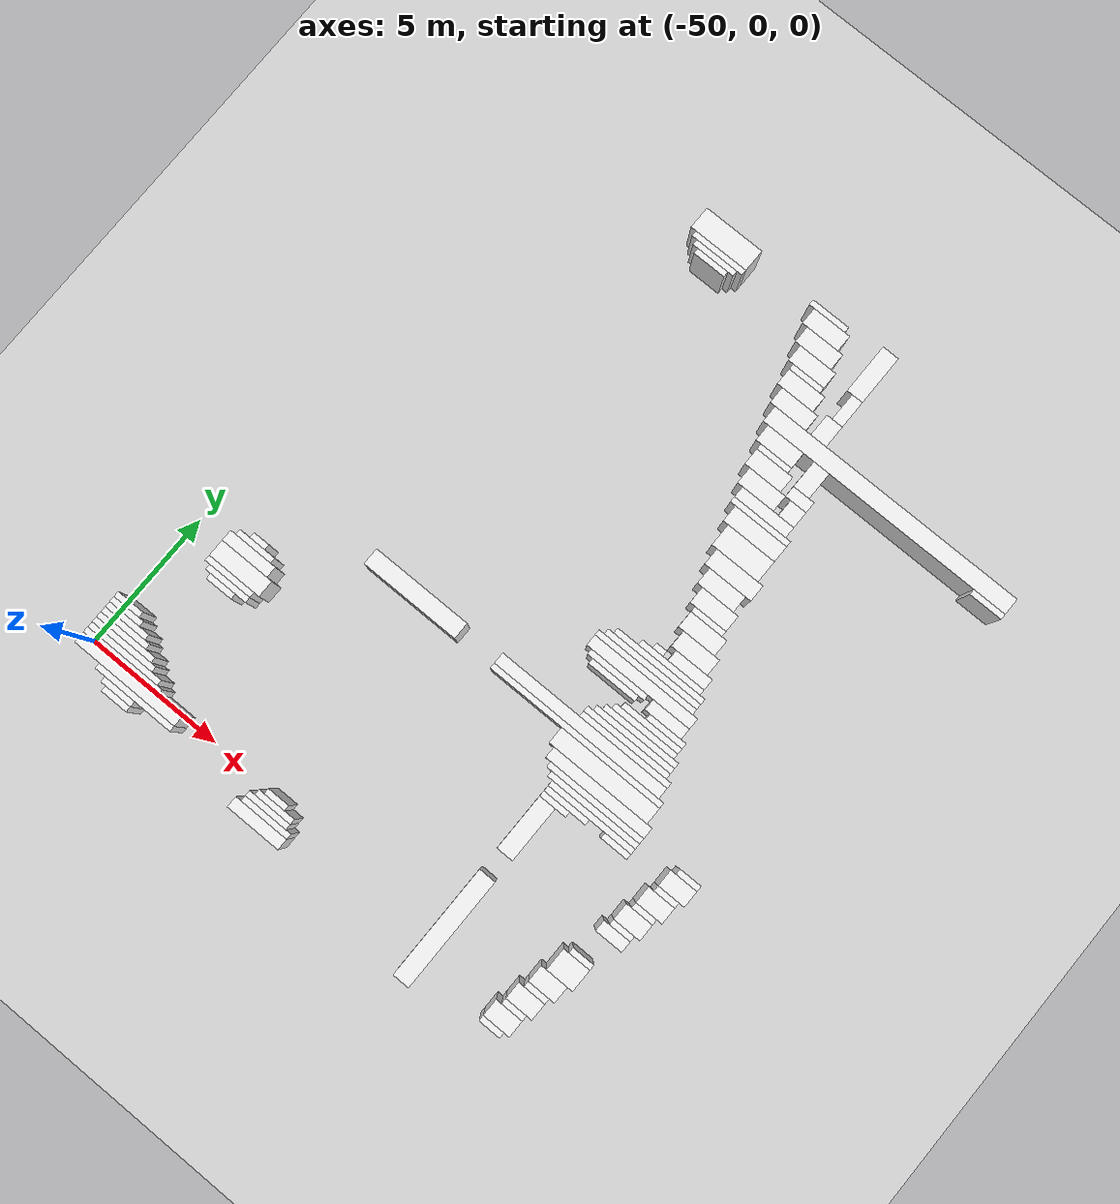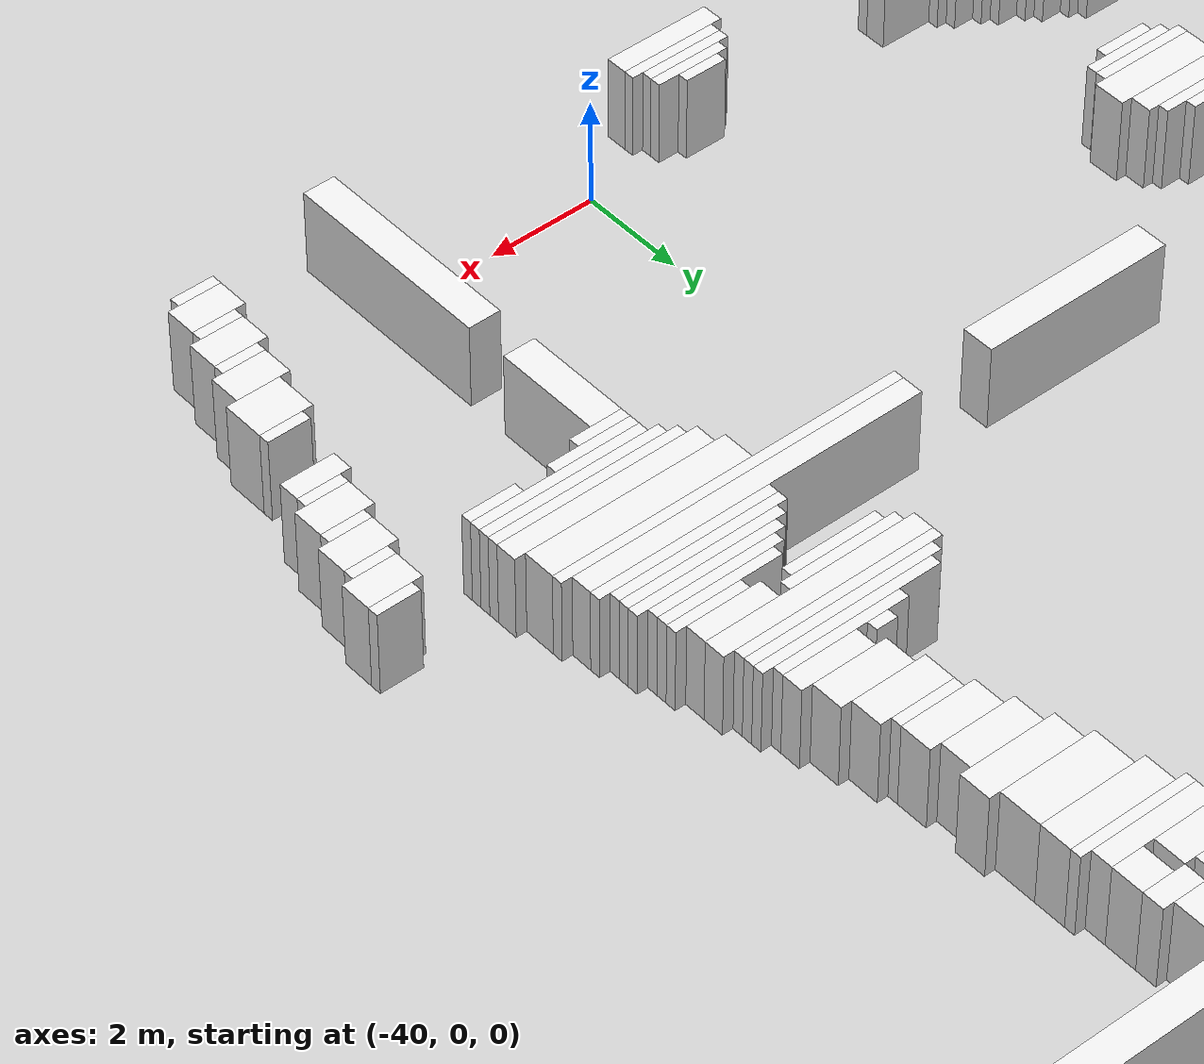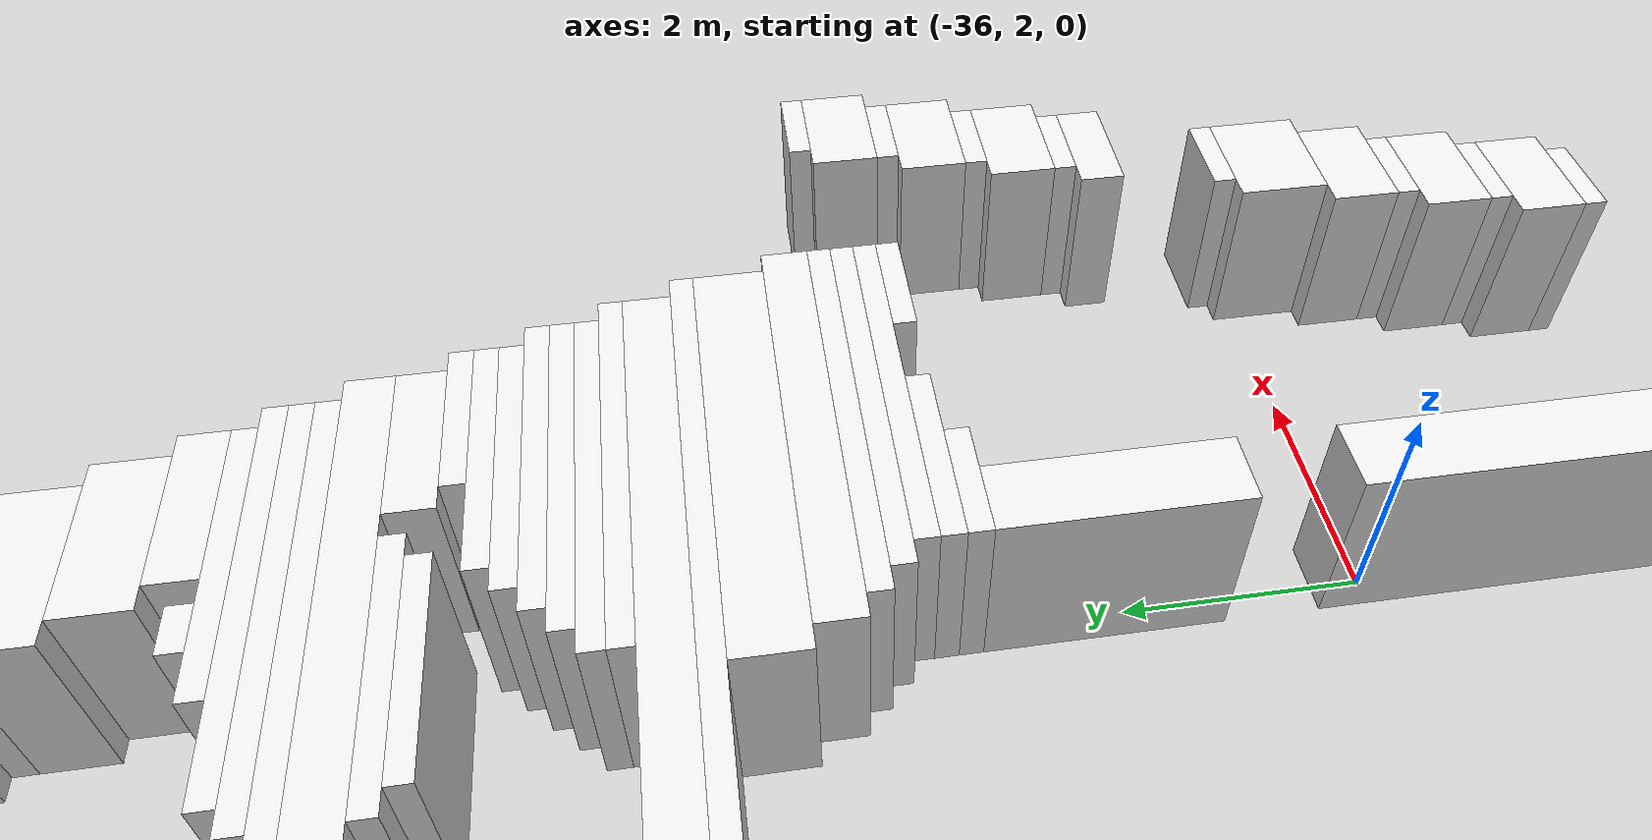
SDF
<sdf version="1.7">
 <world name="default">
  <model name="ground_plane">
   <static>1</static>
   <link name="link">
    <collision name="collision">
     <geometry><plane><normal>0 0 1</normal><size>120 120</size></plane></geometry>
    </collision>
    <visual name="visual">
     <geometry><plane><normal>0 0 1</normal><size>120 120</size></plane></geometry>
     <material>
      <script><uri>file://media/materials/scripts/gazebo.material</uri><name>Gazebo/Grey</name></script>
     </material>
    </visual>
   </link>
  </model>
  <model name="random_complex_03_model">
   <static>1</static>
   <link name="obs_837">
    <pose>-38.7000 22.3000 0.8000 0 0 0</pose>
    <collision name="obs_837_col"><geometry><box><size>1.4000 0.2000 1.6000</size></box></geometry></collision>
    <visual name="obs_837_vis">
     <geometry><box><size>1.4000 0.2000 1.6000</size></box></geometry>
     <material>
      <script><uri>file://media/materials/scripts/gazebo.material</uri><name>Gazebo/White</name></script>
     </material>
    </visual>
   </link>
   <link name="obs_852">
    <pose>-42.7000 22.2000 0.8000 0 0 0</pose>
    <collision name="obs_852_col"><geometry><box><size>2.2000 0.8000 1.6000</size></box></geometry></collision>
    <visual name="obs_852_vis">
     <geometry><box><size>2.2000 0.8000 1.6000</size></box></geometry>
     <material>
      <script><uri>file://media/materials/scripts/gazebo.material</uri><name>Gazebo/White</name></script>
     </material>
    </visual>
   </link>
   <link name="obs_861">
    <pose>-38.5000 21.9000 0.8000 0 0 0</pose>
    <collision name="obs_861_col"><geometry><box><size>1.4000 0.6000 1.6000</size></box></geometry></collision>
    <visual name="obs_861_vis">
     <geometry><box><size>1.4000 0.6000 1.6000</size></box></geometry>
     <material>
      <script><uri>file://media/materials/scripts/gazebo.material</uri><name>Gazebo/White</name></script>
     </material>
    </visual>
   </link>
   <link name="obs_863">
    <pose>-42.6000 21.7000 0.8000 0 0 0</pose>
    <collision name="obs_863_col"><geometry><box><size>2.0000 0.2000 1.6000</size></box></geometry></collision>
    <visual name="obs_863_vis">
     <geometry><box><size>2.0000 0.2000 1.6000</size></box></geometry>
     <material>
      <script><uri>file://media/materials/scripts/gazebo.material</uri><name>Gazebo/White</name></script>
     </material>
    </visual>
   </link>
   <link name="obs_872">
    <pose>-42.6000 21.5000 0.8000 0 0 0</pose>
    <collision name="obs_872_col"><geometry><box><size>1.6000 0.2000 1.6000</size></box></geometry></collision>
    <visual name="obs_872_vis">
     <geometry><box><size>1.6000 0.2000 1.6000</size></box></geometry>
     <material>
      <script><uri>file://media/materials/scripts/gazebo.material</uri><name>Gazebo/White</name></script>
     </material>
    </visual>
   </link>
   <link name="obs_880">
    <pose>-42.6000 21.3000 0.8000 0 0 0</pose>
    <collision name="obs_880_col"><geometry><box><size>1.2000 0.2000 1.6000</size></box></geometry></collision>
    <visual name="obs_880_vis">
     <geometry><box><size>1.2000 0.2000 1.6000</size></box></geometry>
     <material>
      <script><uri>file://media/materials/scripts/gazebo.material</uri><name>Gazebo/White</name></script>
     </material>
    </visual>
   </link>
   <link name="obs_888">
    <pose>-38.3000 21.3000 0.8000 0 0 0</pose>
    <collision name="obs_888_col"><geometry><box><size>1.4000 0.6000 1.6000</size></box></geometry></collision>
    <visual name="obs_888_vis">
     <geometry><box><size>1.4000 0.6000 1.6000</size></box></geometry>
     <material>
      <script><uri>file://media/materials/scripts/gazebo.material</uri><name>Gazebo/White</name></script>
     </material>
    </visual>
   </link>
   <link name="obs_898">
    <pose>-36.5000 21.7000 0.8000 0 0 0</pose>
    <collision name="obs_898_col"><geometry><box><size>0.6000 1.8000 1.6000</size></box></geometry></collision>
    <visual name="obs_898_vis">
     <geometry><box><size>0.6000 1.8000 1.6000</size></box></geometry>
     <material>
      <script><uri>file://media/materials/scripts/gazebo.material</uri><name>Gazebo/White</name></script>
     </material>
    </visual>
   </link>
   <link name="obs_922">
    <pose>-38.1000 20.7000 0.8000 0 0 0</pose>
    <collision name="obs_922_col"><geometry><box><size>1.4000 0.6000 1.6000</size></box></geometry></collision>
    <visual name="obs_922_vis">
     <geometry><box><size>1.4000 0.6000 1.6000</size></box></geometry>
     <material>
      <script><uri>file://media/materials/scripts/gazebo.material</uri><name>Gazebo/White</name></script>
     </material>
    </visual>
   </link>
   <link name="obs_934">
    <pose>-38.0000 20.3000 0.8000 0 0 0</pose>
    <collision name="obs_934_col"><geometry><box><size>1.2000 0.2000 1.6000</size></box></geometry></collision>
    <visual name="obs_934_vis">
     <geometry><box><size>1.2000 0.2000 1.6000</size></box></geometry>
     <material>
      <script><uri>file://media/materials/scripts/gazebo.material</uri><name>Gazebo/White</name></script>
     </material>
    </visual>
   </link>
   <link name="obs_952">
    <pose>-36.4000 20.3000 0.8000 0 0 0</pose>
    <collision name="obs_952_col"><geometry><box><size>0.4000 1.0000 1.6000</size></box></geometry></collision>
    <visual name="obs_952_vis">
     <geometry><box><size>0.4000 1.0000 1.6000</size></box></geometry>
     <material>
      <script><uri>file://media/materials/scripts/gazebo.material</uri><name>Gazebo/White</name></script>
     </material>
    </visual>
   </link>
   <link name="obs_966">
    <pose>-37.9000 19.9000 0.8000 0 0 0</pose>
    <collision name="obs_966_col"><geometry><box><size>1.4000 0.6000 1.6000</size></box></geometry></collision>
    <visual name="obs_966_vis">
     <geometry><box><size>1.4000 0.6000 1.6000</size></box></geometry>
     <material>
      <script><uri>file://media/materials/scripts/gazebo.material</uri><name>Gazebo/White</name></script>
     </material>
    </visual>
   </link>
   <link name="obs_996">
    <pose>-36.5000 19.4000 0.8000 0 0 0</pose>
    <collision name="obs_996_col"><geometry><box><size>0.6000 0.8000 1.6000</size></box></geometry></collision>
    <visual name="obs_996_vis">
     <geometry><box><size>0.6000 0.8000 1.6000</size></box></geometry>
     <material>
      <script><uri>file://media/materials/scripts/gazebo.material</uri><name>Gazebo/White</name></script>
     </material>
    </visual>
   </link>
   <link name="obs_997">
    <pose>-37.7000 19.3000 0.8000 0 0 0</pose>
    <collision name="obs_997_col"><geometry><box><size>1.4000 0.6000 1.6000</size></box></geometry></collision>
    <visual name="obs_997_vis">
     <geometry><box><size>1.4000 0.6000 1.6000</size></box></geometry>
     <material>
      <script><uri>file://media/materials/scripts/gazebo.material</uri><name>Gazebo/White</name></script>
     </material>
    </visual>
   </link>
   <link name="obs_1026">
    <pose>-33.5000 18.7000 0.8000 0 0 0</pose>
    <collision name="obs_1026_col"><geometry><box><size>9.4000 0.6000 1.6000</size></box></geometry></collision>
    <visual name="obs_1026_vis">
     <geometry><box><size>9.4000 0.6000 1.6000</size></box></geometry>
     <material>
      <script><uri>file://media/materials/scripts/gazebo.material</uri><name>Gazebo/White</name></script>
     </material>
    </visual>
   </link>
   <link name="obs_1038">
    <pose>-29.4000 18.3000 0.8000 0 0 0</pose>
    <collision name="obs_1038_col"><geometry><box><size>1.2000 0.2000 1.6000</size></box></geometry></collision>
    <visual name="obs_1038_vis">
     <geometry><box><size>1.2000 0.2000 1.6000</size></box></geometry>
     <material>
      <script><uri>file://media/materials/scripts/gazebo.material</uri><name>Gazebo/White</name></script>
     </material>
    </visual>
   </link>
   <link name="obs_1053">
    <pose>-37.3000 18.1000 0.8000 0 0 0</pose>
    <collision name="obs_1053_col"><geometry><box><size>1.4000 0.6000 1.6000</size></box></geometry></collision>
    <visual name="obs_1053_vis">
     <geometry><box><size>1.4000 0.6000 1.6000</size></box></geometry>
     <material>
      <script><uri>file://media/materials/scripts/gazebo.material</uri><name>Gazebo/White</name></script>
     </material>
    </visual>
   </link>
   <link name="obs_1065">
    <pose>-37.2000 17.7000 0.8000 0 0 0</pose>
    <collision name="obs_1065_col"><geometry><box><size>1.2000 0.2000 1.6000</size></box></geometry></collision>
    <visual name="obs_1065_vis">
     <geometry><box><size>1.2000 0.2000 1.6000</size></box></geometry>
     <material>
      <script><uri>file://media/materials/scripts/gazebo.material</uri><name>Gazebo/White</name></script>
     </material>
    </visual>
   </link>
   <link name="obs_1073">
    <pose>-35.9000 17.9000 0.8000 0 0 0</pose>
    <collision name="obs_1073_col"><geometry><box><size>0.6000 1.0000 1.6000</size></box></geometry></collision>
    <visual name="obs_1073_vis">
     <geometry><box><size>0.6000 1.0000 1.6000</size></box></geometry>
     <material>
      <script><uri>file://media/materials/scripts/gazebo.material</uri><name>Gazebo/White</name></script>
     </material>
    </visual>
   </link>
   <link name="obs_1090">
    <pose>-37.1000 17.3000 0.8000 0 0 0</pose>
    <collision name="obs_1090_col"><geometry><box><size>1.4000 0.6000 1.6000</size></box></geometry></collision>
    <visual name="obs_1090_vis">
     <geometry><box><size>1.4000 0.6000 1.6000</size></box></geometry>
     <material>
      <script><uri>file://media/materials/scripts/gazebo.material</uri><name>Gazebo/White</name></script>
     </material>
    </visual>
   </link>
   <link name="obs_1091">
    <pose>-35.8000 17.2000 0.8000 0 0 0</pose>
    <collision name="obs_1091_col"><geometry><box><size>0.8000 0.4000 1.6000</size></box></geometry></collision>
    <visual name="obs_1091_vis">
     <geometry><box><size>0.8000 0.4000 1.6000</size></box></geometry>
     <material>
      <script><uri>file://media/materials/scripts/gazebo.material</uri><name>Gazebo/White</name></script>
     </material>
    </visual>
   </link>
   <link name="obs_1110">
    <pose>-36.9000 16.7000 0.8000 0 0 0</pose>
    <collision name="obs_1110_col"><geometry><box><size>1.4000 0.6000 1.6000</size></box></geometry></collision>
    <visual name="obs_1110_vis">
     <geometry><box><size>1.4000 0.6000 1.6000</size></box></geometry>
     <material>
      <script><uri>file://media/materials/scripts/gazebo.material</uri><name>Gazebo/White</name></script>
     </material>
    </visual>
   </link>
   <link name="obs_1111">
    <pose>-35.7000 16.7000 0.8000 0 0 0</pose>
    <collision name="obs_1111_col"><geometry><box><size>0.6000 0.6000 1.6000</size></box></geometry></collision>
    <visual name="obs_1111_vis">
     <geometry><box><size>0.6000 0.6000 1.6000</size></box></geometry>
     <material>
      <script><uri>file://media/materials/scripts/gazebo.material</uri><name>Gazebo/White</name></script>
     </material>
    </visual>
   </link>
   <link name="obs_1123">
    <pose>-36.4000 16.2000 0.8000 0 0 0</pose>
    <collision name="obs_1123_col"><geometry><box><size>2.0000 0.4000 1.6000</size></box></geometry></collision>
    <visual name="obs_1123_vis">
     <geometry><box><size>2.0000 0.4000 1.6000</size></box></geometry>
     <material>
      <script><uri>file://media/materials/scripts/gazebo.material</uri><name>Gazebo/White</name></script>
     </material>
    </visual>
   </link>
   <link name="obs_1129">
    <pose>-36.3000 15.9000 0.8000 0 0 0</pose>
    <collision name="obs_1129_col"><geometry><box><size>2.2000 0.2000 1.6000</size></box></geometry></collision>
    <visual name="obs_1129_vis">
     <geometry><box><size>2.2000 0.2000 1.6000</size></box></geometry>
     <material>
      <script><uri>file://media/materials/scripts/gazebo.material</uri><name>Gazebo/White</name></script>
     </material>
    </visual>
   </link>
   <link name="obs_1142">
    <pose>-36.2000 15.5000 0.8000 0 0 0</pose>
    <collision name="obs_1142_col"><geometry><box><size>2.0000 0.6000 1.6000</size></box></geometry></collision>
    <visual name="obs_1142_vis">
     <geometry><box><size>2.0000 0.6000 1.6000</size></box></geometry>
     <material>
      <script><uri>file://media/materials/scripts/gazebo.material</uri><name>Gazebo/White</name></script>
     </material>
    </visual>
   </link>
   <link name="obs_1163">
    <pose>-36.1000 14.8000 0.8000 0 0 0</pose>
    <collision name="obs_1163_col"><geometry><box><size>1.8000 0.8000 1.6000</size></box></geometry></collision>
    <visual name="obs_1163_vis">
     <geometry><box><size>1.8000 0.8000 1.6000</size></box></geometry>
     <material>
      <script><uri>file://media/materials/scripts/gazebo.material</uri><name>Gazebo/White</name></script>
     </material>
    </visual>
   </link>
   <link name="obs_1177">
    <pose>-35.9000 14.1000 0.8000 0 0 0</pose>
    <collision name="obs_1177_col"><geometry><box><size>1.8000 0.6000 1.6000</size></box></geometry></collision>
    <visual name="obs_1177_vis">
     <geometry><box><size>1.8000 0.6000 1.6000</size></box></geometry>
     <material>
      <script><uri>file://media/materials/scripts/gazebo.material</uri><name>Gazebo/White</name></script>
     </material>
    </visual>
   </link>
   <link name="obs_1191">
    <pose>-35.9000 13.5000 0.8000 0 0 0</pose>
    <collision name="obs_1191_col"><geometry><box><size>1.4000 0.6000 1.6000</size></box></geometry></collision>
    <visual name="obs_1191_vis">
     <geometry><box><size>1.4000 0.6000 1.6000</size></box></geometry>
     <material>
      <script><uri>file://media/materials/scripts/gazebo.material</uri><name>Gazebo/White</name></script>
     </material>
    </visual>
   </link>
   <link name="obs_1206">
    <pose>-35.7000 12.9000 0.8000 0 0 0</pose>
    <collision name="obs_1206_col"><geometry><box><size>1.4000 0.6000 1.6000</size></box></geometry></collision>
    <visual name="obs_1206_vis">
     <geometry><box><size>1.4000 0.6000 1.6000</size></box></geometry>
     <material>
      <script><uri>file://media/materials/scripts/gazebo.material</uri><name>Gazebo/White</name></script>
     </material>
    </visual>
   </link>
   <link name="obs_1212">
    <pose>-35.6000 12.5000 0.8000 0 0 0</pose>
    <collision name="obs_1212_col"><geometry><box><size>1.2000 0.2000 1.6000</size></box></geometry></collision>
    <visual name="obs_1212_vis">
     <geometry><box><size>1.2000 0.2000 1.6000</size></box></geometry>
     <material>
      <script><uri>file://media/materials/scripts/gazebo.material</uri><name>Gazebo/White</name></script>
     </material>
    </visual>
   </link>
   <link name="obs_1230">
    <pose>-35.5000 12.1000 0.8000 0 0 0</pose>
    <collision name="obs_1230_col"><geometry><box><size>1.4000 0.6000 1.6000</size></box></geometry></collision>
    <visual name="obs_1230_vis">
     <geometry><box><size>1.4000 0.6000 1.6000</size></box></geometry>
     <material>
      <script><uri>file://media/materials/scripts/gazebo.material</uri><name>Gazebo/White</name></script>
     </material>
    </visual>
   </link>
   <link name="obs_1243">
    <pose>-35.3000 11.5000 0.8000 0 0 0</pose>
    <collision name="obs_1243_col"><geometry><box><size>1.4000 0.6000 1.6000</size></box></geometry></collision>
    <visual name="obs_1243_vis">
     <geometry><box><size>1.4000 0.6000 1.6000</size></box></geometry>
     <material>
      <script><uri>file://media/materials/scripts/gazebo.material</uri><name>Gazebo/White</name></script>
     </material>
    </visual>
   </link>
   <link name="obs_1258">
    <pose>-35.1000 11.0000 0.8000 0 0 0</pose>
    <collision name="obs_1258_col"><geometry><box><size>1.4000 0.4000 1.6000</size></box></geometry></collision>
    <visual name="obs_1258_vis">
     <geometry><box><size>1.4000 0.4000 1.6000</size></box></geometry>
     <material>
      <script><uri>file://media/materials/scripts/gazebo.material</uri><name>Gazebo/White</name></script>
     </material>
    </visual>
   </link>
   <link name="obs_1260">
    <pose>-36.2000 10.9000 0.8000 0 0 0</pose>
    <collision name="obs_1260_col"><geometry><box><size>0.4000 0.2000 1.6000</size></box></geometry></collision>
    <visual name="obs_1260_vis">
     <geometry><box><size>0.4000 0.2000 1.6000</size></box></geometry>
     <material>
      <script><uri>file://media/materials/scripts/gazebo.material</uri><name>Gazebo/White</name></script>
     </material>
    </visual>
   </link>
   <link name="obs_1267">
    <pose>-35.6000 10.7000 0.8000 0 0 0</pose>
    <collision name="obs_1267_col"><geometry><box><size>2.4000 0.2000 1.6000</size></box></geometry></collision>
    <visual name="obs_1267_vis">
     <geometry><box><size>2.4000 0.2000 1.6000</size></box></geometry>
     <material>
      <script><uri>file://media/materials/scripts/gazebo.material</uri><name>Gazebo/White</name></script>
     </material>
    </visual>
   </link>
   <link name="obs_1276">
    <pose>-35.9000 10.5000 0.8000 0 0 0</pose>
    <collision name="obs_1276_col"><geometry><box><size>3.4000 0.2000 1.6000</size></box></geometry></collision>
    <visual name="obs_1276_vis">
     <geometry><box><size>3.4000 0.2000 1.6000</size></box></geometry>
     <material>
      <script><uri>file://media/materials/scripts/gazebo.material</uri><name>Gazebo/White</name></script>
     </material>
    </visual>
   </link>
   <link name="obs_1287">
    <pose>-36.0000 10.3000 0.8000 0 0 0</pose>
    <collision name="obs_1287_col"><geometry><box><size>3.6000 0.2000 1.6000</size></box></geometry></collision>
    <visual name="obs_1287_vis">
     <geometry><box><size>3.6000 0.2000 1.6000</size></box></geometry>
     <material>
      <script><uri>file://media/materials/scripts/gazebo.material</uri><name>Gazebo/White</name></script>
     </material>
    </visual>
   </link>
   <link name="obs_1296">
    <pose>-36.1000 10.1000 0.8000 0 0 0</pose>
    <collision name="obs_1296_col"><geometry><box><size>3.8000 0.2000 1.6000</size></box></geometry></collision>
    <visual name="obs_1296_vis">
     <geometry><box><size>3.8000 0.2000 1.6000</size></box></geometry>
     <material>
      <script><uri>file://media/materials/scripts/gazebo.material</uri><name>Gazebo/White</name></script>
     </material>
    </visual>
   </link>
   <link name="obs_1315">
    <pose>-36.0000 9.8000 0.8000 0 0 0</pose>
    <collision name="obs_1315_col"><geometry><box><size>4.0000 0.4000 1.6000</size></box></geometry></collision>
    <visual name="obs_1315_vis">
     <geometry><box><size>4.0000 0.4000 1.6000</size></box></geometry>
     <material>
      <script><uri>file://media/materials/scripts/gazebo.material</uri><name>Gazebo/White</name></script>
     </material>
    </visual>
   </link>
   <link name="obs_1326">
    <pose>-36.7000 9.5000 0.8000 0 0 0</pose>
    <collision name="obs_1326_col"><geometry><box><size>2.2000 0.2000 1.6000</size></box></geometry></collision>
    <visual name="obs_1326_vis">
     <geometry><box><size>2.2000 0.2000 1.6000</size></box></geometry>
     <material>
      <script><uri>file://media/materials/scripts/gazebo.material</uri><name>Gazebo/White</name></script>
     </material>
    </visual>
   </link>
   <link name="obs_1334">
    <pose>-34.7000 9.4000 0.8000 0 0 0</pose>
    <collision name="obs_1334_col"><geometry><box><size>1.4000 0.4000 1.6000</size></box></geometry></collision>
    <visual name="obs_1334_vis">
     <geometry><box><size>1.4000 0.4000 1.6000</size></box></geometry>
     <material>
      <script><uri>file://media/materials/scripts/gazebo.material</uri><name>Gazebo/White</name></script>
     </material>
    </visual>
   </link>
   <link name="obs_1335">
    <pose>-36.7000 9.3000 0.8000 0 0 0</pose>
    <collision name="obs_1335_col"><geometry><box><size>1.8000 0.2000 1.6000</size></box></geometry></collision>
    <visual name="obs_1335_vis">
     <geometry><box><size>1.8000 0.2000 1.6000</size></box></geometry>
     <material>
      <script><uri>file://media/materials/scripts/gazebo.material</uri><name>Gazebo/White</name></script>
     </material>
    </visual>
   </link>
   <link name="obs_1344">
    <pose>-34.5000 9.1000 0.8000 0 0 0</pose>
    <collision name="obs_1344_col"><geometry><box><size>1.4000 0.2000 1.6000</size></box></geometry></collision>
    <visual name="obs_1344_vis">
     <geometry><box><size>1.4000 0.2000 1.6000</size></box></geometry>
     <material>
      <script><uri>file://media/materials/scripts/gazebo.material</uri><name>Gazebo/White</name></script>
     </material>
    </visual>
   </link>
   <link name="obs_1353">
    <pose>-34.9000 8.9000 0.8000 0 0 0</pose>
    <collision name="obs_1353_col"><geometry><box><size>2.2000 0.2000 1.6000</size></box></geometry></collision>
    <visual name="obs_1353_vis">
     <geometry><box><size>2.2000 0.2000 1.6000</size></box></geometry>
     <material>
      <script><uri>file://media/materials/scripts/gazebo.material</uri><name>Gazebo/White</name></script>
     </material>
    </visual>
   </link>
   <link name="obs_1359">
    <pose>-35.0000 8.7000 0.8000 0 0 0</pose>
    <collision name="obs_1359_col"><geometry><box><size>2.4000 0.2000 1.6000</size></box></geometry></collision>
    <visual name="obs_1359_vis">
     <geometry><box><size>2.4000 0.2000 1.6000</size></box></geometry>
     <material>
      <script><uri>file://media/materials/scripts/gazebo.material</uri><name>Gazebo/White</name></script>
     </material>
    </visual>
   </link>
   <link name="obs_1366">
    <pose>-35.0000 8.5000 0.8000 0 0 0</pose>
    <collision name="obs_1366_col"><geometry><box><size>2.8000 0.2000 1.6000</size></box></geometry></collision>
    <visual name="obs_1366_vis">
     <geometry><box><size>2.8000 0.2000 1.6000</size></box></geometry>
     <material>
      <script><uri>file://media/materials/scripts/gazebo.material</uri><name>Gazebo/White</name></script>
     </material>
    </visual>
   </link>
   <link name="obs_1374">
    <pose>-35.1000 8.3000 0.8000 0 0 0</pose>
    <collision name="obs_1374_col"><geometry><box><size>3.0000 0.2000 1.6000</size></box></geometry></collision>
    <visual name="obs_1374_vis">
     <geometry><box><size>3.0000 0.2000 1.6000</size></box></geometry>
     <material>
      <script><uri>file://media/materials/scripts/gazebo.material</uri><name>Gazebo/White</name></script>
     </material>
    </visual>
   </link>
   <link name="obs_1381">
    <pose>-35.2000 8.1000 0.8000 0 0 0</pose>
    <collision name="obs_1381_col"><geometry><box><size>3.2000 0.2000 1.6000</size></box></geometry></collision>
    <visual name="obs_1381_vis">
     <geometry><box><size>3.2000 0.2000 1.6000</size></box></geometry>
     <material>
      <script><uri>file://media/materials/scripts/gazebo.material</uri><name>Gazebo/White</name></script>
     </material>
    </visual>
   </link>
   <link name="obs_1389">
    <pose>-35.1000 7.9000 0.8000 0 0 0</pose>
    <collision name="obs_1389_col"><geometry><box><size>3.4000 0.2000 1.6000</size></box></geometry></collision>
    <visual name="obs_1389_vis">
     <geometry><box><size>3.4000 0.2000 1.6000</size></box></geometry>
     <material>
      <script><uri>file://media/materials/scripts/gazebo.material</uri><name>Gazebo/White</name></script>
     </material>
    </visual>
   </link>
   <link name="obs_1399">
    <pose>-36.6000 7.6000 0.8000 0 0 0</pose>
    <collision name="obs_1399_col"><geometry><box><size>6.4000 0.4000 1.6000</size></box></geometry></collision>
    <visual name="obs_1399_vis">
     <geometry><box><size>6.4000 0.4000 1.6000</size></box></geometry>
     <material>
      <script><uri>file://media/materials/scripts/gazebo.material</uri><name>Gazebo/White</name></script>
     </material>
    </visual>
   </link>
   <link name="obs_1406">
    <pose>-43.0000 7.5000 0.8000 0 0 0</pose>
    <collision name="obs_1406_col"><geometry><box><size>3.6000 0.6000 1.6000</size></box></geometry></collision>
    <visual name="obs_1406_vis">
     <geometry><box><size>3.6000 0.6000 1.6000</size></box></geometry>
     <material>
      <script><uri>file://media/materials/scripts/gazebo.material</uri><name>Gazebo/White</name></script>
     </material>
    </visual>
   </link>
   <link name="obs_1409">
    <pose>-36.5000 7.3000 0.8000 0 0 0</pose>
    <collision name="obs_1409_col"><geometry><box><size>6.6000 0.2000 1.6000</size></box></geometry></collision>
    <visual name="obs_1409_vis">
     <geometry><box><size>6.6000 0.2000 1.6000</size></box></geometry>
     <material>
      <script><uri>file://media/materials/scripts/gazebo.material</uri><name>Gazebo/White</name></script>
     </material>
    </visual>
   </link>
   <link name="obs_1429">
    <pose>-35.1000 6.9000 0.8000 0 0 0</pose>
    <collision name="obs_1429_col"><geometry><box><size>3.8000 0.6000 1.6000</size></box></geometry></collision>
    <visual name="obs_1429_vis">
     <geometry><box><size>3.8000 0.6000 1.6000</size></box></geometry>
     <material>
      <script><uri>file://media/materials/scripts/gazebo.material</uri><name>Gazebo/White</name></script>
     </material>
    </visual>
   </link>
   <link name="obs_1442">
    <pose>-34.9000 6.4000 0.8000 0 0 0</pose>
    <collision name="obs_1442_col"><geometry><box><size>3.8000 0.4000 1.6000</size></box></geometry></collision>
    <visual name="obs_1442_vis">
     <geometry><box><size>3.8000 0.4000 1.6000</size></box></geometry>
     <material>
      <script><uri>file://media/materials/scripts/gazebo.material</uri><name>Gazebo/White</name></script>
     </material>
    </visual>
   </link>
   <link name="obs_1448">
    <pose>-34.8000 6.1000 0.8000 0 0 0</pose>
    <collision name="obs_1448_col"><geometry><box><size>3.6000 0.2000 1.6000</size></box></geometry></collision>
    <visual name="obs_1448_vis">
     <geometry><box><size>3.6000 0.2000 1.6000</size></box></geometry>
     <material>
      <script><uri>file://media/materials/scripts/gazebo.material</uri><name>Gazebo/White</name></script>
     </material>
    </visual>
   </link>
   <link name="obs_1449">
    <pose>-31.2000 6.1000 0.8000 0 0 0</pose>
    <collision name="obs_1449_col"><geometry><box><size>0.8000 0.2000 1.6000</size></box></geometry></collision>
    <visual name="obs_1449_vis">
     <geometry><box><size>0.8000 0.2000 1.6000</size></box></geometry>
     <material>
      <script><uri>file://media/materials/scripts/gazebo.material</uri><name>Gazebo/White</name></script>
     </material>
    </visual>
   </link>
   <link name="obs_1456">
    <pose>-34.7000 5.9000 0.8000 0 0 0</pose>
    <collision name="obs_1456_col"><geometry><box><size>3.4000 0.2000 1.6000</size></box></geometry></collision>
    <visual name="obs_1456_vis">
     <geometry><box><size>3.4000 0.2000 1.6000</size></box></geometry>
     <material>
      <script><uri>file://media/materials/scripts/gazebo.material</uri><name>Gazebo/White</name></script>
     </material>
    </visual>
   </link>
   <link name="obs_1461">
    <pose>-47.7000 5.7000 0.8000 0 0 0</pose>
    <collision name="obs_1461_col"><geometry><box><size>0.6000 0.2000 1.6000</size></box></geometry></collision>
    <visual name="obs_1461_vis">
     <geometry><box><size>0.6000 0.2000 1.6000</size></box></geometry>
     <material>
      <script><uri>file://media/materials/scripts/gazebo.material</uri><name>Gazebo/White</name></script>
     </material>
    </visual>
   </link>
   <link name="obs_1462">
    <pose>-34.6000 5.7000 0.8000 0 0 0</pose>
    <collision name="obs_1462_col"><geometry><box><size>3.2000 0.2000 1.6000</size></box></geometry></collision>
    <visual name="obs_1462_vis">
     <geometry><box><size>3.2000 0.2000 1.6000</size></box></geometry>
     <material>
      <script><uri>file://media/materials/scripts/gazebo.material</uri><name>Gazebo/White</name></script>
     </material>
    </visual>
   </link>
   <link name="obs_1468">
    <pose>-31.3000 5.7000 0.8000 0 0 0</pose>
    <collision name="obs_1468_col"><geometry><box><size>1.0000 0.6000 1.6000</size></box></geometry></collision>
    <visual name="obs_1468_vis">
     <geometry><box><size>1.0000 0.6000 1.6000</size></box></geometry>
     <material>
      <script><uri>file://media/materials/scripts/gazebo.material</uri><name>Gazebo/White</name></script>
     </material>
    </visual>
   </link>
   <link name="obs_1469">
    <pose>-47.7000 5.5000 0.8000 0 0 0</pose>
    <collision name="obs_1469_col"><geometry><box><size>1.4000 0.2000 1.6000</size></box></geometry></collision>
    <visual name="obs_1469_vis">
     <geometry><box><size>1.4000 0.2000 1.6000</size></box></geometry>
     <material>
      <script><uri>file://media/materials/scripts/gazebo.material</uri><name>Gazebo/White</name></script>
     </material>
    </visual>
   </link>
   <link name="obs_1470">
    <pose>-35.4000 5.5000 0.8000 0 0 0</pose>
    <collision name="obs_1470_col"><geometry><box><size>1.6000 0.2000 1.6000</size></box></geometry></collision>
    <visual name="obs_1470_vis">
     <geometry><box><size>1.6000 0.2000 1.6000</size></box></geometry>
     <material>
      <script><uri>file://media/materials/scripts/gazebo.material</uri><name>Gazebo/White</name></script>
     </material>
    </visual>
   </link>
   <link name="obs_1471">
    <pose>-33.5000 5.5000 0.8000 0 0 0</pose>
    <collision name="obs_1471_col"><geometry><box><size>1.0000 0.2000 1.6000</size></box></geometry></collision>
    <visual name="obs_1471_vis">
     <geometry><box><size>1.0000 0.2000 1.6000</size></box></geometry>
     <material>
      <script><uri>file://media/materials/scripts/gazebo.material</uri><name>Gazebo/White</name></script>
     </material>
    </visual>
   </link>
   <link name="obs_1480">
    <pose>-35.7000 5.3000 0.8000 0 0 0</pose>
    <collision name="obs_1480_col"><geometry><box><size>1.0000 0.2000 1.6000</size></box></geometry></collision>
    <visual name="obs_1480_vis">
     <geometry><box><size>1.0000 0.2000 1.6000</size></box></geometry>
     <material>
      <script><uri>file://media/materials/scripts/gazebo.material</uri><name>Gazebo/White</name></script>
     </material>
    </visual>
   </link>
   <link name="obs_1481">
    <pose>-31.4000 5.3000 0.8000 0 0 0</pose>
    <collision name="obs_1481_col"><geometry><box><size>0.8000 0.2000 1.6000</size></box></geometry></collision>
    <visual name="obs_1481_vis">
     <geometry><box><size>0.8000 0.2000 1.6000</size></box></geometry>
     <material>
      <script><uri>file://media/materials/scripts/gazebo.material</uri><name>Gazebo/White</name></script>
     </material>
    </visual>
   </link>
   <link name="obs_1487">
    <pose>-47.7000 5.2000 0.8000 0 0 0</pose>
    <collision name="obs_1487_col"><geometry><box><size>1.8000 0.4000 1.6000</size></box></geometry></collision>
    <visual name="obs_1487_vis">
     <geometry><box><size>1.8000 0.4000 1.6000</size></box></geometry>
     <material>
      <script><uri>file://media/materials/scripts/gazebo.material</uri><name>Gazebo/White</name></script>
     </material>
    </visual>
   </link>
   <link name="obs_1501">
    <pose>-31.5000 4.9000 0.8000 0 0 0</pose>
    <collision name="obs_1501_col"><geometry><box><size>1.0000 0.6000 1.6000</size></box></geometry></collision>
    <visual name="obs_1501_vis">
     <geometry><box><size>1.0000 0.6000 1.6000</size></box></geometry>
     <material>
      <script><uri>file://media/materials/scripts/gazebo.material</uri><name>Gazebo/White</name></script>
     </material>
    </visual>
   </link>
   <link name="obs_1508">
    <pose>-47.6000 4.7000 0.8000 0 0 0</pose>
    <collision name="obs_1508_col"><geometry><box><size>2.0000 0.6000 1.6000</size></box></geometry></collision>
    <visual name="obs_1508_vis">
     <geometry><box><size>2.0000 0.6000 1.6000</size></box></geometry>
     <material>
      <script><uri>file://media/materials/scripts/gazebo.material</uri><name>Gazebo/White</name></script>
     </material>
    </visual>
   </link>
   <link name="obs_1509">
    <pose>-31.6000 4.5000 0.8000 0 0 0</pose>
    <collision name="obs_1509_col"><geometry><box><size>0.8000 0.2000 1.6000</size></box></geometry></collision>
    <visual name="obs_1509_vis">
     <geometry><box><size>0.8000 0.2000 1.6000</size></box></geometry>
     <material>
      <script><uri>file://media/materials/scripts/gazebo.material</uri><name>Gazebo/White</name></script>
     </material>
    </visual>
   </link>
   <link name="obs_1513">
    <pose>-47.7000 4.3000 0.8000 0 0 0</pose>
    <collision name="obs_1513_col"><geometry><box><size>1.8000 0.2000 1.6000</size></box></geometry></collision>
    <visual name="obs_1513_vis">
     <geometry><box><size>1.8000 0.2000 1.6000</size></box></geometry>
     <material>
      <script><uri>file://media/materials/scripts/gazebo.material</uri><name>Gazebo/White</name></script>
     </material>
    </visual>
   </link>
   <link name="obs_1517">
    <pose>-47.6000 4.1000 0.8000 0 0 0</pose>
    <collision name="obs_1517_col"><geometry><box><size>1.6000 0.2000 1.6000</size></box></geometry></collision>
    <visual name="obs_1517_vis">
     <geometry><box><size>1.6000 0.2000 1.6000</size></box></geometry>
     <material>
      <script><uri>file://media/materials/scripts/gazebo.material</uri><name>Gazebo/White</name></script>
     </material>
    </visual>
   </link>
   <link name="obs_1522">
    <pose>-31.7000 4.1000 0.8000 0 0 0</pose>
    <collision name="obs_1522_col"><geometry><box><size>1.0000 0.6000 1.6000</size></box></geometry></collision>
    <visual name="obs_1522_vis">
     <geometry><box><size>1.0000 0.6000 1.6000</size></box></geometry>
     <material>
      <script><uri>file://media/materials/scripts/gazebo.material</uri><name>Gazebo/White</name></script>
     </material>
    </visual>
   </link>
   <link name="obs_1523">
    <pose>-47.7000 3.9000 0.8000 0 0 0</pose>
    <collision name="obs_1523_col"><geometry><box><size>1.0000 0.2000 1.6000</size></box></geometry></collision>
    <visual name="obs_1523_vis">
     <geometry><box><size>1.0000 0.2000 1.6000</size></box></geometry>
     <material>
      <script><uri>file://media/materials/scripts/gazebo.material</uri><name>Gazebo/White</name></script>
     </material>
    </visual>
   </link>
   <link name="obs_1526">
    <pose>-31.8000 3.7000 0.8000 0 0 0</pose>
    <collision name="obs_1526_col"><geometry><box><size>0.8000 0.2000 1.6000</size></box></geometry></collision>
    <visual name="obs_1526_vis">
     <geometry><box><size>0.8000 0.2000 1.6000</size></box></geometry>
     <material>
      <script><uri>file://media/materials/scripts/gazebo.material</uri><name>Gazebo/White</name></script>
     </material>
    </visual>
   </link>
   <link name="obs_1533">
    <pose>-35.9000 4.2000 0.8000 0 0 0</pose>
    <collision name="obs_1533_col"><geometry><box><size>0.6000 2.0000 1.6000</size></box></geometry></collision>
    <visual name="obs_1533_vis">
     <geometry><box><size>0.6000 2.0000 1.6000</size></box></geometry>
     <material>
      <script><uri>file://media/materials/scripts/gazebo.material</uri><name>Gazebo/White</name></script>
     </material>
    </visual>
   </link>
   <link name="obs_1537">
    <pose>-31.9000 3.4000 0.8000 0 0 0</pose>
    <collision name="obs_1537_col"><geometry><box><size>1.0000 0.4000 1.6000</size></box></geometry></collision>
    <visual name="obs_1537_vis">
     <geometry><box><size>1.0000 0.4000 1.6000</size></box></geometry>
     <material>
      <script><uri>file://media/materials/scripts/gazebo.material</uri><name>Gazebo/White</name></script>
     </material>
    </visual>
   </link>
   <link name="obs_1547">
    <pose>-32.2000 2.3000 0.8000 0 0 0</pose>
    <collision name="obs_1547_col"><geometry><box><size>0.8000 0.2000 1.6000</size></box></geometry></collision>
    <visual name="obs_1547_vis">
     <geometry><box><size>0.8000 0.2000 1.6000</size></box></geometry>
     <material>
      <script><uri>file://media/materials/scripts/gazebo.material</uri><name>Gazebo/White</name></script>
     </material>
    </visual>
   </link>
   <link name="obs_1562">
    <pose>-49.5000 1.7000 0.8000 0 0 0</pose>
    <collision name="obs_1562_col"><geometry><box><size>1.0000 0.2000 1.6000</size></box></geometry></collision>
    <visual name="obs_1562_vis">
     <geometry><box><size>1.0000 0.2000 1.6000</size></box></geometry>
     <material>
      <script><uri>file://media/materials/scripts/gazebo.material</uri><name>Gazebo/White</name></script>
     </material>
    </visual>
   </link>
   <link name="obs_1568">
    <pose>-32.3000 1.8000 0.8000 0 0 0</pose>
    <collision name="obs_1568_col"><geometry><box><size>1.0000 0.8000 1.6000</size></box></geometry></collision>
    <visual name="obs_1568_vis">
     <geometry><box><size>1.0000 0.8000 1.6000</size></box></geometry>
     <material>
      <script><uri>file://media/materials/scripts/gazebo.material</uri><name>Gazebo/White</name></script>
     </material>
    </visual>
   </link>
   <link name="obs_1569">
    <pose>-49.4000 1.5000 0.8000 0 0 0</pose>
    <collision name="obs_1569_col"><geometry><box><size>1.2000 0.2000 1.6000</size></box></geometry></collision>
    <visual name="obs_1569_vis">
     <geometry><box><size>1.2000 0.2000 1.6000</size></box></geometry>
     <material>
      <script><uri>file://media/materials/scripts/gazebo.material</uri><name>Gazebo/White</name></script>
     </material>
    </visual>
   </link>
   <link name="obs_1576">
    <pose>-49.2000 1.3000 0.8000 0 0 0</pose>
    <collision name="obs_1576_col"><geometry><box><size>1.6000 0.2000 1.6000</size></box></geometry></collision>
    <visual name="obs_1576_vis">
     <geometry><box><size>1.6000 0.2000 1.6000</size></box></geometry>
     <material>
      <script><uri>file://media/materials/scripts/gazebo.material</uri><name>Gazebo/White</name></script>
     </material>
    </visual>
   </link>
   <link name="obs_1580">
    <pose>-49.1000 1.1000 0.8000 0 0 0</pose>
    <collision name="obs_1580_col"><geometry><box><size>1.8000 0.2000 1.6000</size></box></geometry></collision>
    <visual name="obs_1580_vis">
     <geometry><box><size>1.8000 0.2000 1.6000</size></box></geometry>
     <material>
      <script><uri>file://media/materials/scripts/gazebo.material</uri><name>Gazebo/White</name></script>
     </material>
    </visual>
   </link>
   <link name="obs_1586">
    <pose>-32.5000 1.1000 0.8000 0 0 0</pose>
    <collision name="obs_1586_col"><geometry><box><size>1.0000 0.6000 1.6000</size></box></geometry></collision>
    <visual name="obs_1586_vis">
     <geometry><box><size>1.0000 0.6000 1.6000</size></box></geometry>
     <material>
      <script><uri>file://media/materials/scripts/gazebo.material</uri><name>Gazebo/White</name></script>
     </material>
    </visual>
   </link>
   <link name="obs_1587">
    <pose>-48.9000 0.9000 0.8000 0 0 0</pose>
    <collision name="obs_1587_col"><geometry><box><size>2.2000 0.2000 1.6000</size></box></geometry></collision>
    <visual name="obs_1587_vis">
     <geometry><box><size>2.2000 0.2000 1.6000</size></box></geometry>
     <material>
      <script><uri>file://media/materials/scripts/gazebo.material</uri><name>Gazebo/White</name></script>
     </material>
    </visual>
   </link>
   <link name="obs_1596">
    <pose>-48.8000 0.7000 0.8000 0 0 0</pose>
    <collision name="obs_1596_col"><geometry><box><size>2.4000 0.2000 1.6000</size></box></geometry></collision>
    <visual name="obs_1596_vis">
     <geometry><box><size>2.4000 0.2000 1.6000</size></box></geometry>
     <material>
      <script><uri>file://media/materials/scripts/gazebo.material</uri><name>Gazebo/White</name></script>
     </material>
    </visual>
   </link>
   <link name="obs_1597">
    <pose>-32.6000 0.7000 0.8000 0 0 0</pose>
    <collision name="obs_1597_col"><geometry><box><size>0.8000 0.2000 1.6000</size></box></geometry></collision>
    <visual name="obs_1597_vis">
     <geometry><box><size>0.8000 0.2000 1.6000</size></box></geometry>
     <material>
      <script><uri>file://media/materials/scripts/gazebo.material</uri><name>Gazebo/White</name></script>
     </material>
    </visual>
   </link>
   <link name="obs_1606">
    <pose>-48.6000 0.5000 0.8000 0 0 0</pose>
    <collision name="obs_1606_col"><geometry><box><size>2.8000 0.2000 1.6000</size></box></geometry></collision>
    <visual name="obs_1606_vis">
     <geometry><box><size>2.8000 0.2000 1.6000</size></box></geometry>
     <material>
      <script><uri>file://media/materials/scripts/gazebo.material</uri><name>Gazebo/White</name></script>
     </material>
    </visual>
   </link>
   <link name="obs_1613">
    <pose>-48.5000 0.3000 0.8000 0 0 0</pose>
    <collision name="obs_1613_col"><geometry><box><size>3.0000 0.2000 1.6000</size></box></geometry></collision>
    <visual name="obs_1613_vis">
     <geometry><box><size>3.0000 0.2000 1.6000</size></box></geometry>
     <material>
      <script><uri>file://media/materials/scripts/gazebo.material</uri><name>Gazebo/White</name></script>
     </material>
    </visual>
   </link>
   <link name="obs_1616">
    <pose>-32.7000 0.3000 0.8000 0 0 0</pose>
    <collision name="obs_1616_col"><geometry><box><size>1.0000 0.6000 1.6000</size></box></geometry></collision>
    <visual name="obs_1616_vis">
     <geometry><box><size>1.0000 0.6000 1.6000</size></box></geometry>
     <material>
      <script><uri>file://media/materials/scripts/gazebo.material</uri><name>Gazebo/White</name></script>
     </material>
    </visual>
   </link>
   <link name="obs_1622">
    <pose>-42.2000 0.1000 0.8000 0 0 0</pose>
    <collision name="obs_1622_col"><geometry><box><size>0.8000 0.2000 1.6000</size></box></geometry></collision>
    <visual name="obs_1622_vis">
     <geometry><box><size>0.8000 0.2000 1.6000</size></box></geometry>
     <material>
      <script><uri>file://media/materials/scripts/gazebo.material</uri><name>Gazebo/White</name></script>
     </material>
    </visual>
   </link>
   <link name="obs_1627">
    <pose>-48.0000 0.0000 0.8000 0 0 0</pose>
    <collision name="obs_1627_col"><geometry><box><size>4.0000 0.4000 1.6000</size></box></geometry></collision>
    <visual name="obs_1627_vis">
     <geometry><box><size>4.0000 0.4000 1.6000</size></box></geometry>
     <material>
      <script><uri>file://media/materials/scripts/gazebo.material</uri><name>Gazebo/White</name></script>
     </material>
    </visual>
   </link>
   <link name="obs_1628">
    <pose>-42.1000 -0.1000 0.8000 0 0 0</pose>
    <collision name="obs_1628_col"><geometry><box><size>1.4000 0.2000 1.6000</size></box></geometry></collision>
    <visual name="obs_1628_vis">
     <geometry><box><size>1.4000 0.2000 1.6000</size></box></geometry>
     <material>
      <script><uri>file://media/materials/scripts/gazebo.material</uri><name>Gazebo/White</name></script>
     </material>
    </visual>
   </link>
   <link name="obs_1629">
    <pose>-32.8000 -0.1000 0.8000 0 0 0</pose>
    <collision name="obs_1629_col"><geometry><box><size>0.8000 0.2000 1.6000</size></box></geometry></collision>
    <visual name="obs_1629_vis">
     <geometry><box><size>0.8000 0.2000 1.6000</size></box></geometry>
     <material>
      <script><uri>file://media/materials/scripts/gazebo.material</uri><name>Gazebo/White</name></script>
     </material>
    </visual>
   </link>
   <link name="obs_1638">
    <pose>-47.5000 -0.3000 0.8000 0 0 0</pose>
    <collision name="obs_1638_col"><geometry><box><size>3.0000 0.2000 1.6000</size></box></geometry></collision>
    <visual name="obs_1638_vis">
     <geometry><box><size>3.0000 0.2000 1.6000</size></box></geometry>
     <material>
      <script><uri>file://media/materials/scripts/gazebo.material</uri><name>Gazebo/White</name></script>
     </material>
    </visual>
   </link>
   <link name="obs_1639">
    <pose>-42.2000 -0.3000 0.8000 0 0 0</pose>
    <collision name="obs_1639_col"><geometry><box><size>1.6000 0.2000 1.6000</size></box></geometry></collision>
    <visual name="obs_1639_vis">
     <geometry><box><size>1.6000 0.2000 1.6000</size></box></geometry>
     <material>
      <script><uri>file://media/materials/scripts/gazebo.material</uri><name>Gazebo/White</name></script>
     </material>
    </visual>
   </link>
   <link name="obs_1646">
    <pose>-48.0000 -0.5000 0.8000 0 0 0</pose>
    <collision name="obs_1646_col"><geometry><box><size>1.2000 0.2000 1.6000</size></box></geometry></collision>
    <visual name="obs_1646_vis">
     <geometry><box><size>1.2000 0.2000 1.6000</size></box></geometry>
     <material>
      <script><uri>file://media/materials/scripts/gazebo.material</uri><name>Gazebo/White</name></script>
     </material>
    </visual>
   </link>
   <link name="obs_1647">
    <pose>-42.1000 -0.5000 0.8000 0 0 0</pose>
    <collision name="obs_1647_col"><geometry><box><size>1.8000 0.2000 1.6000</size></box></geometry></collision>
    <visual name="obs_1647_vis">
     <geometry><box><size>1.8000 0.2000 1.6000</size></box></geometry>
     <material>
      <script><uri>file://media/materials/scripts/gazebo.material</uri><name>Gazebo/White</name></script>
     </material>
    </visual>
   </link>
   <link name="obs_1652">
    <pose>-32.9000 -0.5000 0.8000 0 0 0</pose>
    <collision name="obs_1652_col"><geometry><box><size>1.0000 0.6000 1.6000</size></box></geometry></collision>
    <visual name="obs_1652_vis">
     <geometry><box><size>1.0000 0.6000 1.6000</size></box></geometry>
     <material>
      <script><uri>file://media/materials/scripts/gazebo.material</uri><name>Gazebo/White</name></script>
     </material>
    </visual>
   </link>
   <link name="obs_1655">
    <pose>-47.9000 -0.7000 0.8000 0 0 0</pose>
    <collision name="obs_1655_col"><geometry><box><size>1.0000 0.2000 1.6000</size></box></geometry></collision>
    <visual name="obs_1655_vis">
     <geometry><box><size>1.0000 0.2000 1.6000</size></box></geometry>
     <material>
      <script><uri>file://media/materials/scripts/gazebo.material</uri><name>Gazebo/White</name></script>
     </material>
    </visual>
   </link>
   <link name="obs_1663">
    <pose>-42.2000 -0.8000 0.8000 0 0 0</pose>
    <collision name="obs_1663_col"><geometry><box><size>2.0000 0.4000 1.6000</size></box></geometry></collision>
    <visual name="obs_1663_vis">
     <geometry><box><size>2.0000 0.4000 1.6000</size></box></geometry>
     <material>
      <script><uri>file://media/materials/scripts/gazebo.material</uri><name>Gazebo/White</name></script>
     </material>
    </visual>
   </link>
   <link name="obs_1664">
    <pose>-33.0000 -0.9000 0.8000 0 0 0</pose>
    <collision name="obs_1664_col"><geometry><box><size>0.8000 0.2000 1.6000</size></box></geometry></collision>
    <visual name="obs_1664_vis">
     <geometry><box><size>0.8000 0.2000 1.6000</size></box></geometry>
     <material>
      <script><uri>file://media/materials/scripts/gazebo.material</uri><name>Gazebo/White</name></script>
     </material>
    </visual>
   </link>
   <link name="obs_1693">
    <pose>-35.9000 0.4000 0.8000 0 0 0</pose>
    <collision name="obs_1693_col"><geometry><box><size>0.6000 4.0000 1.6000</size></box></geometry></collision>
    <visual name="obs_1693_vis">
     <geometry><box><size>0.6000 4.0000 1.6000</size></box></geometry>
     <material>
      <script><uri>file://media/materials/scripts/gazebo.material</uri><name>Gazebo/White</name></script>
     </material>
    </visual>
   </link>
  </model>
 </world>
</sdf>
